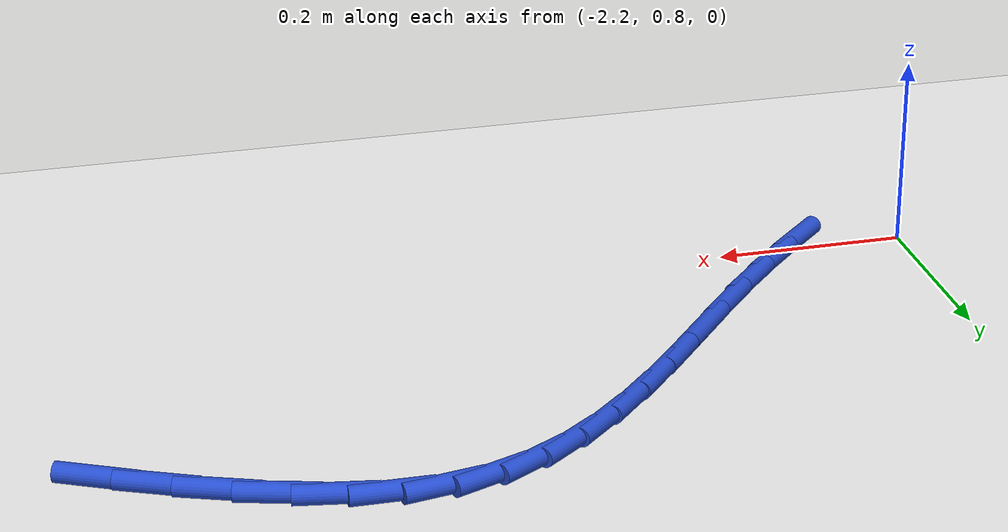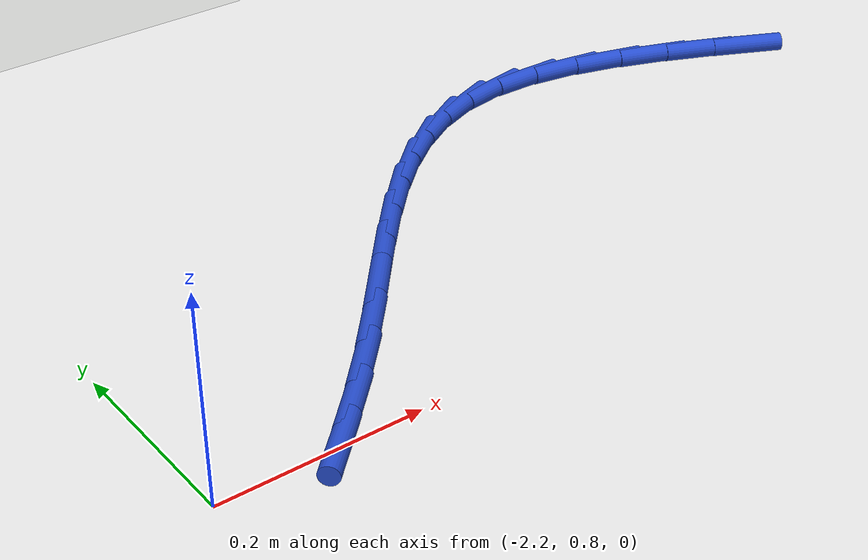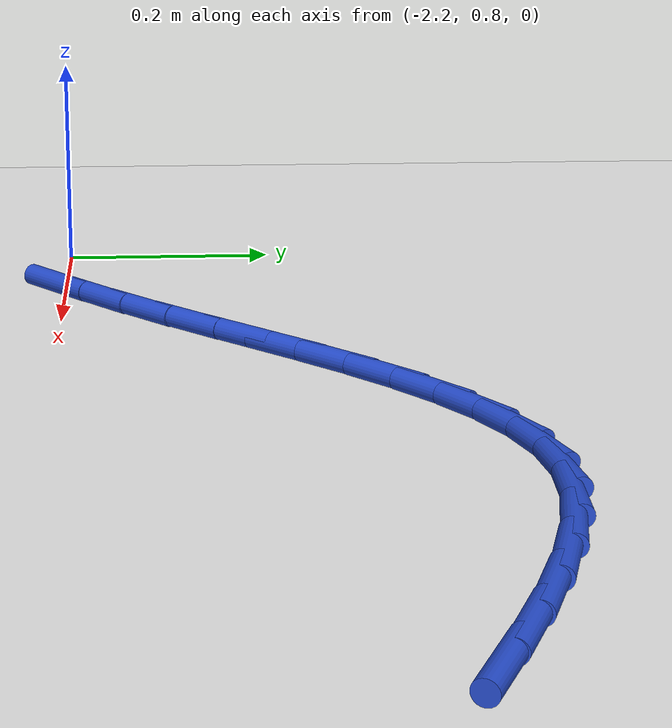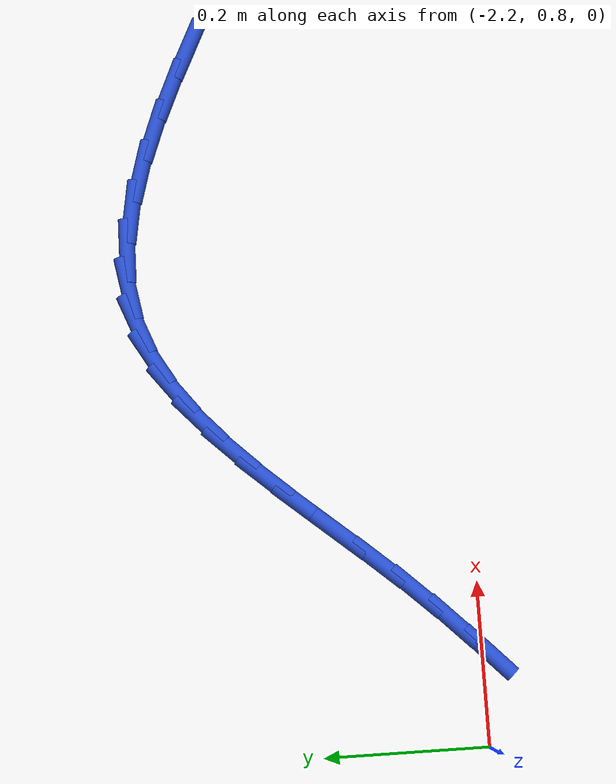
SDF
<sdf version="1.6">
 <world name="default">
  <model name="ground_plane">
   <static>1</static>
   <link name="link">
    <collision name="collision">
     <geometry><plane><normal>0 0 1</normal><size>100 100</size></plane></geometry>
     <surface><friction><ode><mu>100</mu><mu2>50</mu2></ode></friction></surface>
    </collision>
    <visual name="visual">
     <cast_shadows>0</cast_shadows>
     <geometry><plane><normal>0 0 1</normal><size>100 100</size></plane></geometry>
     <material>
      <script><uri>file://media/materials/scripts/gazebo.material</uri><name>Gazebo/WhiteGlow</name></script>
     </material>
    </visual>
   </link>
  </model>
  <model name="line">
   <link name="link_36">
    <pose>-1.3158144010639805 1.1112416647261616 0.01 0 1.57 -0.4535181067150821</pose>
    <collision name="collision">
     <geometry><cylinder><radius>0.01</radius><length>0.08</length></cylinder></geometry>
    </collision>
    <visual name="visual">
     <material>
      <script><name>Gazebo/Blue</name><uri>file://media/materials/scripts/gazebo.material</uri></script>
     </material>
     <geometry><cylinder><radius>0.01</radius><length>0.08</length></cylinder></geometry>
    </visual>
   </link>
   <link name="link_37">
    <pose>-1.3666780116263972 1.136032664784893 0.01 0 1.57 -0.4168555540847507</pose>
    <collision name="collision">
     <geometry><cylinder><radius>0.01</radius><length>0.08</length></cylinder></geometry>
    </collision>
    <visual name="visual">
     <material>
      <script><name>Gazebo/Blue</name><uri>file://media/materials/scripts/gazebo.material</uri></script>
     </material>
     <geometry><cylinder><radius>0.01</radius><length>0.08</length></cylinder></geometry>
    </visual>
   </link>
   <link name="link_38">
    <pose>-1.4177125033881126 1.1586310586971693 0.01 0 1.57 -0.3602195578214304</pose>
    <collision name="collision">
     <geometry><cylinder><radius>0.01</radius><length>0.08</length></cylinder></geometry>
    </collision>
    <visual name="visual">
     <material>
      <script><name>Gazebo/Blue</name><uri>file://media/materials/scripts/gazebo.material</uri></script>
     </material>
     <geometry><cylinder><radius>0.01</radius><length>0.08</length></cylinder></geometry>
    </visual>
   </link>
   <link name="link_39">
    <pose>-1.4684541539648253 1.1777430808570963 0.01 0 1.57 -0.279232193013129</pose>
    <collision name="collision">
     <geometry><cylinder><radius>0.01</radius><length>0.08</length></cylinder></geometry>
    </collision>
    <visual name="visual">
     <material>
      <script><name>Gazebo/Blue</name><uri>file://media/materials/scripts/gazebo.material</uri></script>
     </material>
     <geometry><cylinder><radius>0.01</radius><length>0.08</length></cylinder></geometry>
    </visual>
   </link>
   <link name="link_40">
    <pose>-1.5184392409722343 1.192074965658782 0.01 0 1.57 -0.16775162427579252</pose>
    <collision name="collision">
     <geometry><cylinder><radius>0.01</radius><length>0.08</length></cylinder></geometry>
    </collision>
    <visual name="visual">
     <material>
      <script><name>Gazebo/Blue</name><uri>file://media/materials/scripts/gazebo.material</uri></script>
     </material>
     <geometry><cylinder><radius>0.01</radius><length>0.08</length></cylinder></geometry>
    </visual>
   </link>
   <link name="link_41">
    <pose>-1.567204042026038 1.2003329474963325 0.01 0 1.57 -0.018908075107396106</pose>
    <collision name="collision">
     <geometry><cylinder><radius>0.01</radius><length>0.08</length></cylinder></geometry>
    </collision>
    <visual name="visual">
     <material>
      <script><name>Gazebo/Blue</name><uri>file://media/materials/scripts/gazebo.material</uri></script>
     </material>
     <geometry><cylinder><radius>0.01</radius><length>0.08</length></cylinder></geometry>
    </visual>
   </link>
   <link name="link_42">
    <pose>-1.6142848347419352 1.2012232607638555 0.01 0 1.57 0.1701212312967609</pose>
    <collision name="collision">
     <geometry><cylinder><radius>0.01</radius><length>0.08</length></cylinder></geometry>
    </collision>
    <visual name="visual">
     <material>
      <script><name>Gazebo/Blue</name><uri>file://media/materials/scripts/gazebo.material</uri></script>
     </material>
     <geometry><cylinder><radius>0.01</radius><length>0.08</length></cylinder></geometry>
    </visual>
   </link>
   <link name="link_43">
    <pose>-1.6592343280527753 1.1935017636128293 0.01 0 1.57 0.3661801967702904</pose>
    <collision name="collision">
     <geometry><cylinder><radius>0.01</radius><length>0.08</length></cylinder></geometry>
    </collision>
    <visual name="visual">
     <material>
      <script><name>Gazebo/Blue</name><uri>file://media/materials/scripts/gazebo.material</uri></script>
     </material>
     <geometry><cylinder><radius>0.01</radius><length>0.08</length></cylinder></geometry>
    </visual>
   </link>
   <link name="link_44">
    <pose>-1.7019957820391942 1.1771038066980417 0.01 0 1.57 0.5293730550373316</pose>
    <collision name="collision">
     <geometry><cylinder><radius>0.01</radius><length>0.08</length></cylinder></geometry>
    </collision>
    <visual name="visual">
     <material>
      <script><name>Gazebo/Blue</name><uri>file://media/materials/scripts/gazebo.material</uri></script>
     </material>
     <geometry><cylinder><radius>0.01</radius><length>0.08</length></cylinder></geometry>
    </visual>
   </link>
   <link name="link_45">
    <pose>-1.742910156682548 1.1531658229246404 0.01 0 1.57 0.6550555817626337</pose>
    <collision name="collision">
     <geometry><cylinder><radius>0.01</radius><length>0.08</length></cylinder></geometry>
    </collision>
    <visual name="visual">
     <material>
      <script><name>Gazebo/Blue</name><uri>file://media/materials/scripts/gazebo.material</uri></script>
     </material>
     <geometry><cylinder><radius>0.01</radius><length>0.08</length></cylinder></geometry>
    </visual>
   </link>
   <link name="link_46">
    <pose>-1.782336273179394 1.122878187349913 0.01 0 1.57 0.7467731136661964</pose>
    <collision name="collision">
     <geometry><cylinder><radius>0.01</radius><length>0.08</length></cylinder></geometry>
    </collision>
    <visual name="visual">
     <material>
      <script><name>Gazebo/Blue</name><uri>file://media/materials/scripts/gazebo.material</uri></script>
     </material>
     <geometry><cylinder><radius>0.01</radius><length>0.08</length></cylinder></geometry>
    </visual>
   </link>
   <link name="link_47">
    <pose>-1.8206329527262906 1.0874312750311477 0.01 0 1.57 0.809953976416097</pose>
    <collision name="collision">
     <geometry><cylinder><radius>0.01</radius><length>0.08</length></cylinder></geometry>
    </collision>
    <visual name="visual">
     <material>
      <script><name>Gazebo/Blue</name><uri>file://media/materials/scripts/gazebo.material</uri></script>
     </material>
     <geometry><cylinder><radius>0.01</radius><length>0.08</length></cylinder></geometry>
    </visual>
   </link>
   <link name="link_48">
    <pose>-1.858159016519796 1.0480154610256318 0.01 0 1.57 0.8493652491550342</pose>
    <collision name="collision">
     <geometry><cylinder><radius>0.01</radius><length>0.08</length></cylinder></geometry>
    </collision>
    <visual name="visual">
     <material>
      <script><name>Gazebo/Blue</name><uri>file://media/materials/scripts/gazebo.material</uri></script>
     </material>
     <geometry><cylinder><radius>0.01</radius><length>0.08</length></cylinder></geometry>
    </visual>
   </link>
   <link name="link_49">
    <pose>-1.8952732857564698 1.005821120390654 0.01 0 1.57 0.8683454732291476</pose>
    <collision name="collision">
     <geometry><cylinder><radius>0.01</radius><length>0.08</length></cylinder></geometry>
    </collision>
    <visual name="visual">
     <material>
      <script><name>Gazebo/Blue</name><uri>file://media/materials/scripts/gazebo.material</uri></script>
     </material>
     <geometry><cylinder><radius>0.01</radius><length>0.08</length></cylinder></geometry>
    </visual>
   </link>
   <link name="link_50">
    <pose>-1.9323345816328694 0.9620386281835008 0.01 0 1.57 0.8687525995645669</pose>
    <collision name="collision">
     <geometry><cylinder><radius>0.01</radius><length>0.08</length></cylinder></geometry>
    </collision>
    <visual name="visual">
     <material>
      <script><name>Gazebo/Blue</name><uri>file://media/materials/scripts/gazebo.material</uri></script>
     </material>
     <geometry><cylinder><radius>0.01</radius><length>0.08</length></cylinder></geometry>
    </visual>
   </link>
   <link name="link_51">
    <pose>-1.9697017253455533 0.9178583594614617 0.01 0 1.57 0.8510845574693076</pose>
    <collision name="collision">
     <geometry><cylinder><radius>0.01</radius><length>0.08</length></cylinder></geometry>
    </collision>
    <visual name="visual">
     <material>
      <script><name>Gazebo/Blue</name><uri>file://media/materials/scripts/gazebo.material</uri></script>
     </material>
     <geometry><cylinder><radius>0.01</radius><length>0.08</length></cylinder></geometry>
    </visual>
   </link>
   <link name="link_52">
    <pose>-2.0077335380910797 0.8744706892818236 0.01 0 1.57 0.8164890846452765</pose>
    <collision name="collision">
     <geometry><cylinder><radius>0.01</radius><length>0.08</length></cylinder></geometry>
    </collision>
    <visual name="visual">
     <material>
      <script><name>Gazebo/Blue</name><uri>file://media/materials/scripts/gazebo.material</uri></script>
     </material>
     <geometry><cylinder><radius>0.01</radius><length>0.08</length></cylinder></geometry>
    </visual>
   </link>
   <link name="link_53">
    <pose>-2.0467259559552557 0.8329750158716591 0.01 0 1.57 0.7843755853639921</pose>
    <collision name="collision">
     <geometry><cylinder><radius>0.01</radius><length>0.08</length></cylinder></geometry>
    </collision>
    <visual name="visual">
     <material>
      <script><name>Gazebo/Blue</name><uri>file://media/materials/scripts/gazebo.material</uri></script>
     </material>
     <geometry><cylinder><radius>0.01</radius><length>0.08</length></cylinder></geometry>
    </visual>
   </link>
   <link name="link_54">
    <pose>-2.0862948853971854 0.7934869284267664 0.01 0 1.57 0.7675576930944683</pose>
    <collision name="collision">
     <geometry><cylinder><radius>0.01</radius><length>0.08</length></cylinder></geometry>
    </collision>
    <visual name="visual">
     <material>
      <script><name>Gazebo/Blue</name><uri>file://media/materials/scripts/gazebo.material</uri></script>
     </material>
     <geometry><cylinder><radius>0.01</radius><length>0.08</length></cylinder></geometry>
    </visual>
   </link>
  </model>
 </world>
</sdf>
